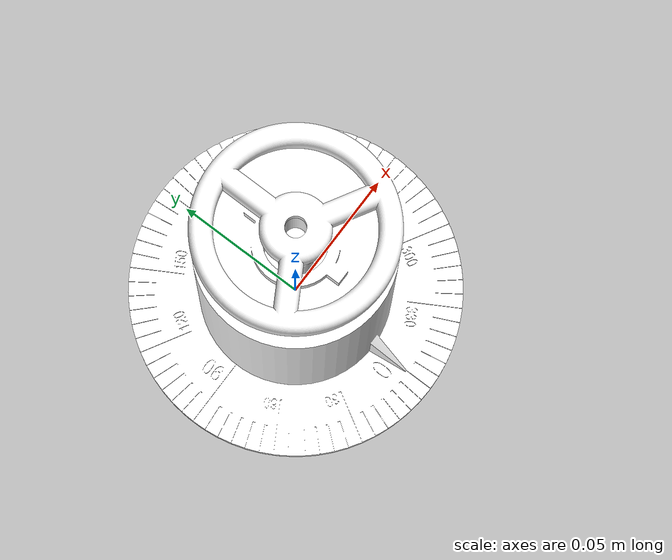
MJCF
<mujoco model="C3_Wheel">

  <asset>
    <material name="object_material" rgba="1 1 1 1" specular="0" shininess="0"/>

    <mesh name="angle_plate" file="angle_plate.stl" scale="1 1 1"/>
    <mesh name="round_disk" file="round_disk.stl" scale="1 1 1"/>
    <mesh name="clutch_rod" file="clutch_rod.stl" scale="1 1 1"/>
    <mesh name="clutch_rotor" file="clutch_rotor.stl" scale="1 1 1"/>
    <mesh name="contact_cylinder" file="contact_cylinder.stl" scale="1 1 1"/>
  </asset>

  <default>
    <default class="visual">
      <geom contype="0" conaffinity="0" group="2"/>
    </default>
    <default class="collision">
      <geom group="3"/>
    </default>
  </default>

  <worldbody>
    <body name="conti_rot_base" pos="0 0 0">
      <geom name="angle_plate" type="mesh" mesh="angle_plate" material="object_material" class="visual"/>
      <geom type="cylinder" size="0.06075 0.002" pos="0 0 0.002" density="248" class="collision"/>
      <geom type="cylinder" size="0.0308 0.0315" pos="0 0 0.0355" density="248"/>
    </body>

    <body name="disk_rod" pos="0 0 0.067">
      <joint name="disk_rod_slide_joint" type="slide" pos="0 0 0" axis="0 0 1" range="-0.01 0.045" damping="100"/>
      <joint name="disk_rod_hinge_joint" type="hinge" axis="0 0 1"/>
      <geom name="round_disk" type="mesh" mesh="round_disk" pos="0 0 0.06875" material="object_material" mass="0.05"/>
      <geom name="clutch_rod" type="mesh" mesh="clutch_rod" material="object_material" class="visual"/>
      <geom name="contact_cylinder" type="mesh" mesh="contact_cylinder" pos="0 0 0" class="collision" mass="0.05"/>
    </body>

    <body name="clutch_rotor" pos="0 0 0.004">
      <joint name="clutch_rotor_slide_joint" type="slide" pos="0 0 0" axis="0 0 1" range="0 0.030" damping="1"/>
      <joint name="clutch_rotor_hinge_joint" type="hinge" axis="0 0 1"/>
      <geom name="clutch_rotor" type="mesh" mesh="clutch_rotor" material="object_material" class="visual"/>
      <geom type="cylinder" size="0.035 0.002" pos="0 0 0.098" mass="0.3" class="collision" friction="0.8 0.8 0.01"/>
    </body>

  </worldbody>
</mujoco>
